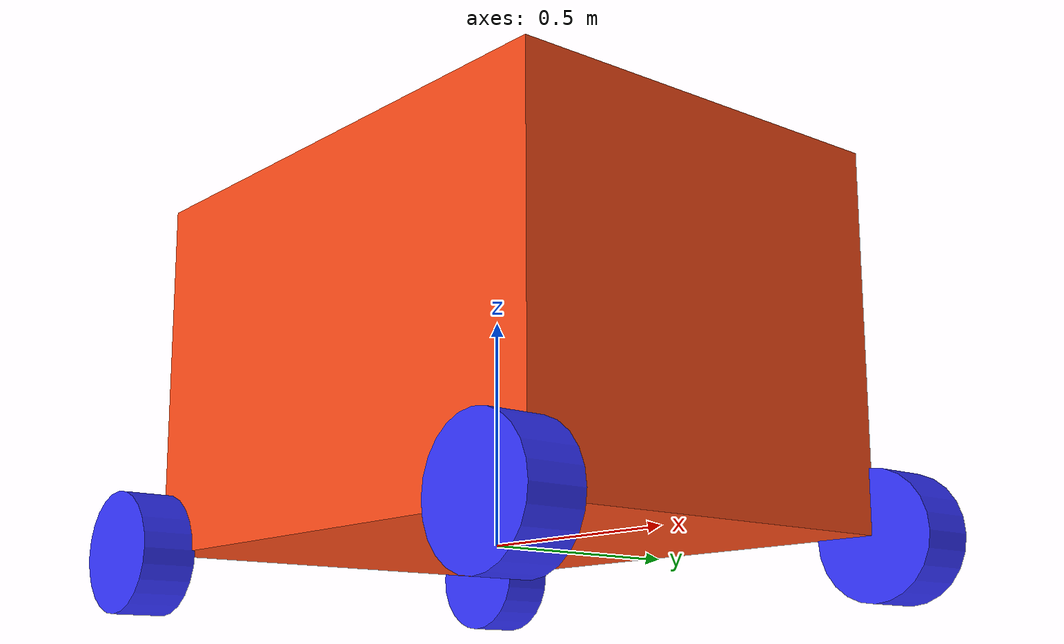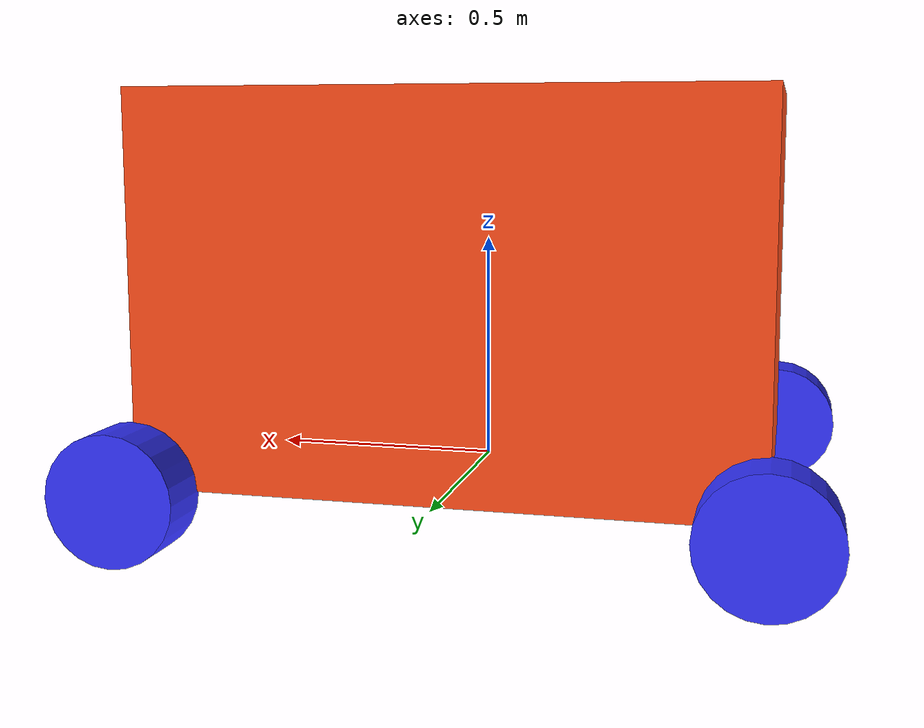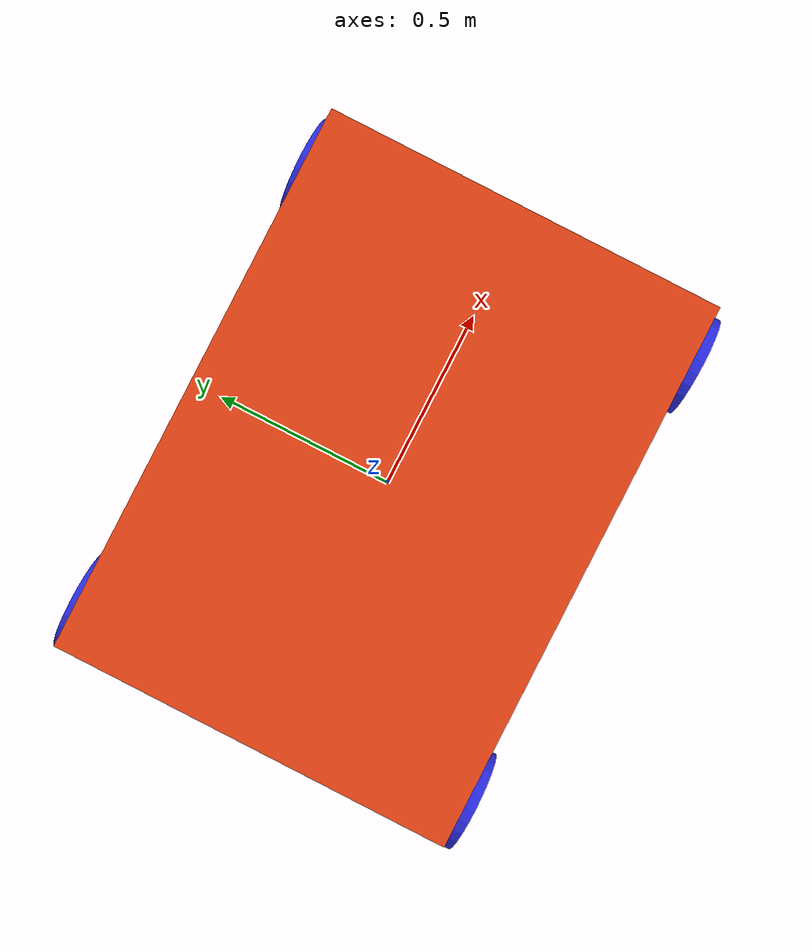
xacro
<?xml version="1.0"?>
<robot xmlns:xacro="http://www.ros.org/wiki/xacro" >
    <xacro:include filename="inertial_macros.xacro"/>

    <material name="white">
        <color rgba="1 1 1 1" />
    </material>

    <material name="orange">
        <color rgba="1 0.3 0.1 1"/>
    </material>

    <material name="blue">
        <color rgba="0.2 0.2 1 1"/>
    </material>

    <material name="black">
        <color rgba="0 0 0 1"/>
    </material>
    <material name="red">
        <color rgba="1 0 0 1"/>
    </material>
    <material name="yellow">
        <color rgba="0.8 0.8 0 1"/>
    </material>
    <material name="dark_gray">
        <color rgba="0.5 0.5 0.5 1"/>
    </material>

    <!-- BASE LINK -->

    <link name="base_link">

    </link>

    <!-- CHASSIS LINK -->

    <joint name="chassis_joint" type="fixed">
        <parent link="base_link"/>
        <child link="chassis_link"/>
        <origin xyz="-0.65 0 0"/>
    </joint>

    <link name="chassis_link">
        <visual>
            <origin xyz="0.65 0 0.415"/>
            <geometry>
                <box size="1.3 0.94 0.83"/>
            </geometry>
            <material name="orange"/>
        </visual>
        <xacro:inertial_box mass="0.5" x="1.3" y="0.94" z="0.83">
            <origin xyz="0.65 0 0.415"/>
        </xacro:inertial_box>
    </link>
    <gazebo reference="chassis_link">
        <material>Gazebo/Orange</material>
    </gazebo>

    <!-- Back LEFT WHEEL LINK -->

    <joint name="back_left_wheel_joint" type="continuous">
        <parent link="chassis_link"/>
        <child link="back_left_wheel"/>
        <origin xyz="0 0.525 0" rpy="-${pi/2} 0 0" />
        <axis xyz="0 0 1"/>
    </joint>

    <link name="back_left_wheel">
        <visual>
            <geometry>
                <cylinder radius="0.1397" length="0.125"/>
            </geometry>
            <material name="blue"/>
        </visual>
        <collision>
            <geometry>
                <cylinder radius="0.1397" length="0.125"/>
            </geometry>
        </collision>
        <xacro:inertial_cylinder mass="0.1" length="0.1397" radius="0.125">
            <origin xyz="0 0 0" rpy="0 0 0"/>
        </xacro:inertial_cylinder>
    </link>
    <gazebo reference="back_left_wheel">
        <material>Gazebo/Blue</material>
    </gazebo>

    <!-- Back RIGHT WHEEL LINK -->

    <joint name="back_right_wheel_joint" type="continuous">
        <parent link="chassis_link"/>
        <child link="back_right_wheel"/>
        <origin xyz="0 -0.525 0" rpy="${pi/2} 0 0" />
        <axis xyz="0 0 -1"/>
    </joint>

    <link name="back_right_wheel">
        <visual>
            <geometry>
                <cylinder radius="0.1397" length="0.125"/>
            </geometry>
            <material name="blue"/>
        </visual>
        <collision>
            <geometry>
                <cylinder radius="0.1397" length="0.125"/>
            </geometry>
        </collision>
        <xacro:inertial_cylinder mass="0.1" length="0.1397" radius="0.125">
            <origin xyz="0 0 0" rpy="0 0 0"/>
        </xacro:inertial_cylinder>
    </link>
    <gazebo reference="back_right_wheel">
        <material>Gazebo/Blue</material>
    </gazebo>

    <!-- Steer LINK -->

    <!-- Front LEFT WHEEL LINK -->

    <joint name="front_left_wheel_joint" type="continuous">
        <parent link="chassis_link"/>
        <child link="front_left_wheel"/>
        <origin xyz="1.3 0.525 0" rpy="-${pi/2} 0 0" />
        <axis xyz="0 0 1"/>
    </joint>

    <link name="front_left_wheel">
        <visual>
            <geometry>
                <cylinder radius="0.1397" length="0.125"/>
            </geometry>
            <material name="blue"/>
        </visual>
        <collision>
            <geometry>
                <cylinder radius="0.1397" length="0.125"/>
            </geometry>
        </collision>
        <xacro:inertial_cylinder mass="0.1" length="0.1397" radius="0.125">
            <origin xyz="0 0 0" rpy="0 0 0"/>
        </xacro:inertial_cylinder>
    </link>
    <gazebo reference="front_left_wheel">
        <material>Gazebo/Blue</material>
    </gazebo>

    <!-- RIGHT WHEEL LINK -->

    <joint name="front_right_wheel_joint" type="continuous">
        <parent link="chassis_link"/>
        <child link="front_right_wheel"/>
        <origin xyz="1.3 -0.525 0" rpy="${pi/2} 0 0" />
        <axis xyz="0 0 -1"/>
    </joint>

    <link name="front_right_wheel">
        <visual>
            <geometry>
                <cylinder radius="0.1397" length="0.125"/>
            </geometry>
            <material name="blue"/>
        </visual>
        <collision>
            <geometry>
                <cylinder radius="0.1397" length="0.125"/>
            </geometry>
        </collision>
        <xacro:inertial_cylinder mass="0.1" length="0.1397" radius="0.125">
            <origin xyz="0 0 0" rpy="0 0 0"/>
        </xacro:inertial_cylinder>
    </link>
    <gazebo reference="front_right_wheel">
        <material>Gazebo/Blue</material>
    </gazebo>
    <gazebo>
        <plugin name="skid_steer_drive_controller" filename="libgazebo_ros_skid_steer_drive.so">
            <updateRate>100.0</updateRate>
            <robotNamespace>/</robotNamespace>
            <leftFrontJoint>front_left_wheel_joint</leftFrontJoint>
            <rightFrontJoint>front_right_wheel_joint</rightFrontJoint>
            <leftRearJoint>rear_left_wheel_joint</leftRearJoint>
            <rightRearJoint>rear_right_wheel_joint</rightRearJoint>
            <wheelSeparation>1.05</wheelSeparation>
            <wheelDiameter>0.2794</wheelDiameter>
            <robotBaseFrame>base_link</robotBaseFrame>
            <torque>200</torque>
            <MaxForce>5.0</MaxForce>
            <commandTopic>cmd_vel</commandTopic>
            <odometryTopic>odom</odometryTopic>
            <odometryFrame>odom</odometryFrame>
            <broadcastTF>true</broadcastTF>
            <covariance_x>0.001</covariance_x>
            <covariance_y>0.001</covariance_y>
            <covariance_yaw>0.01</covariance_yaw>
        </plugin>

    </gazebo>

</robot>
